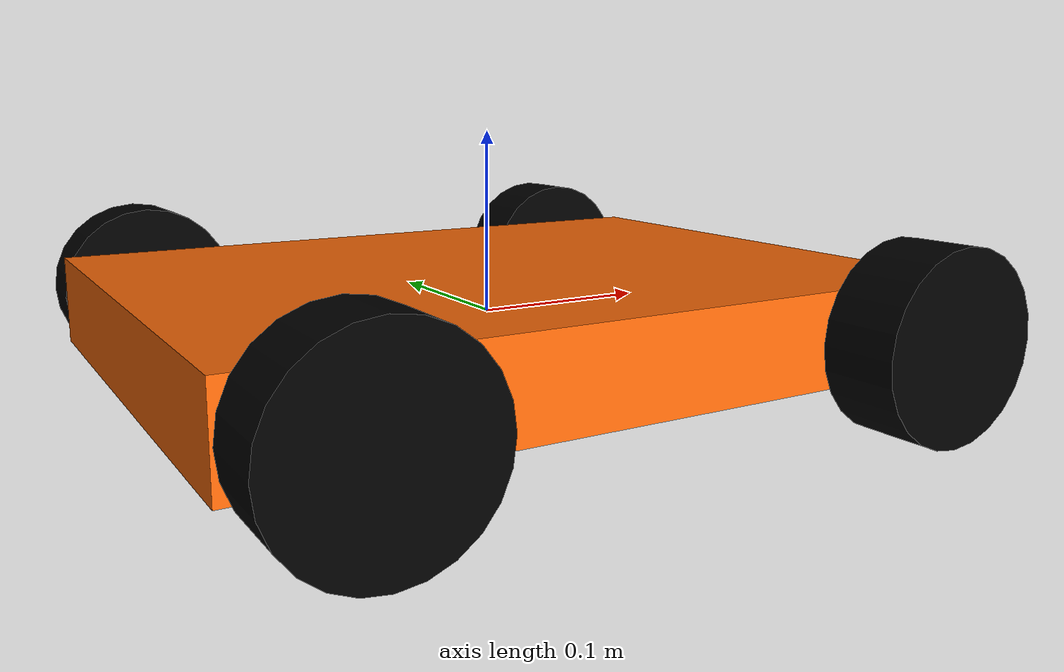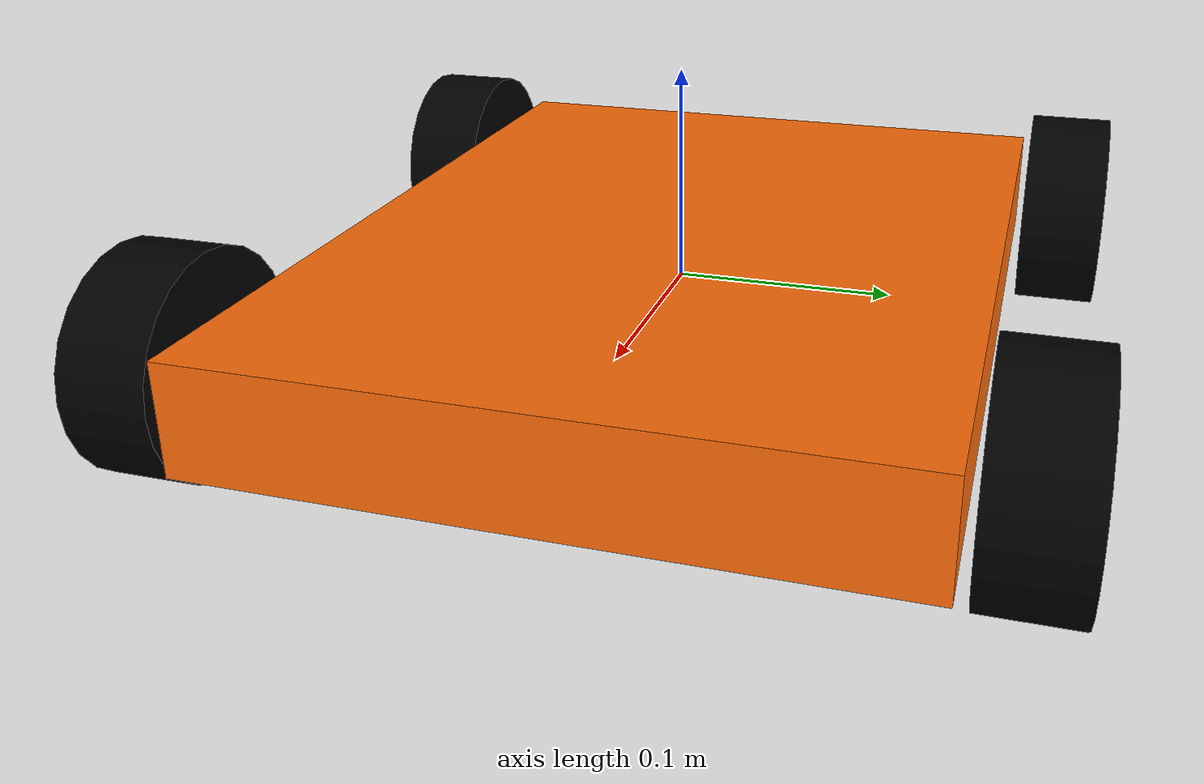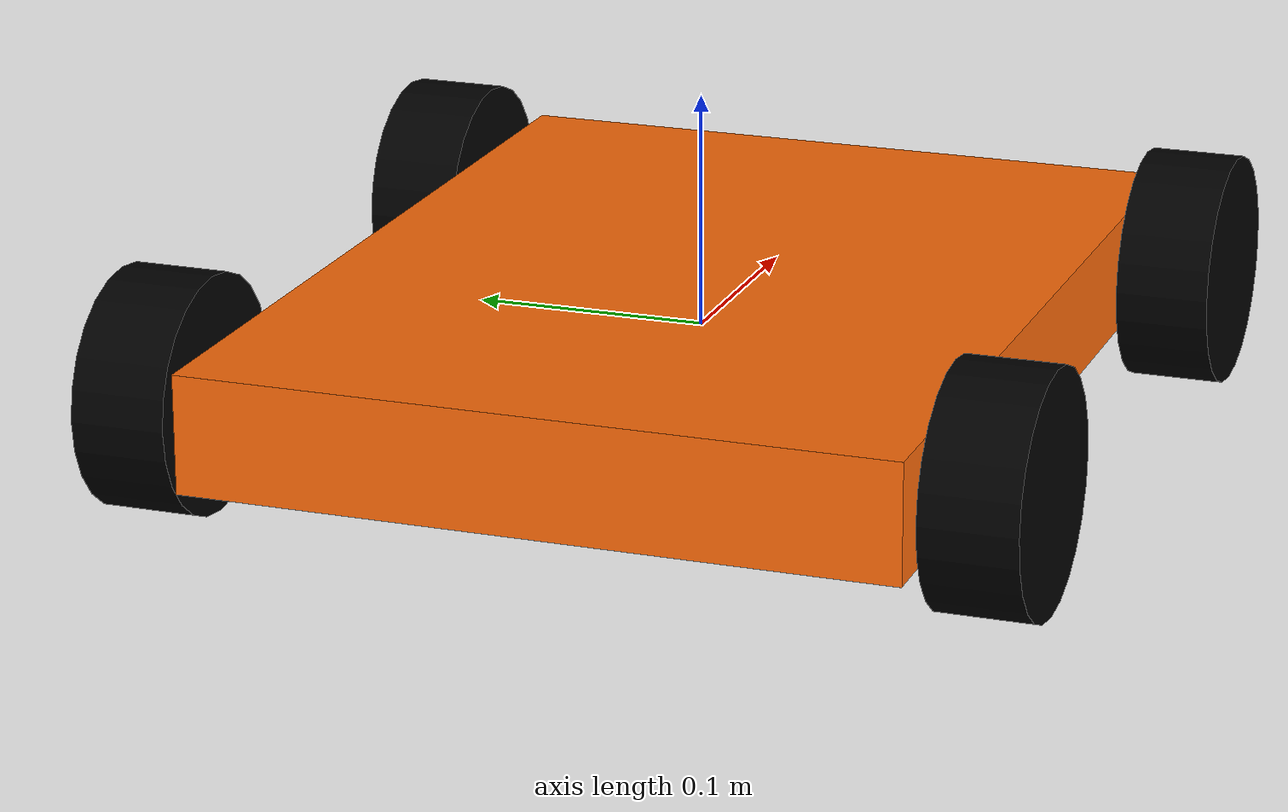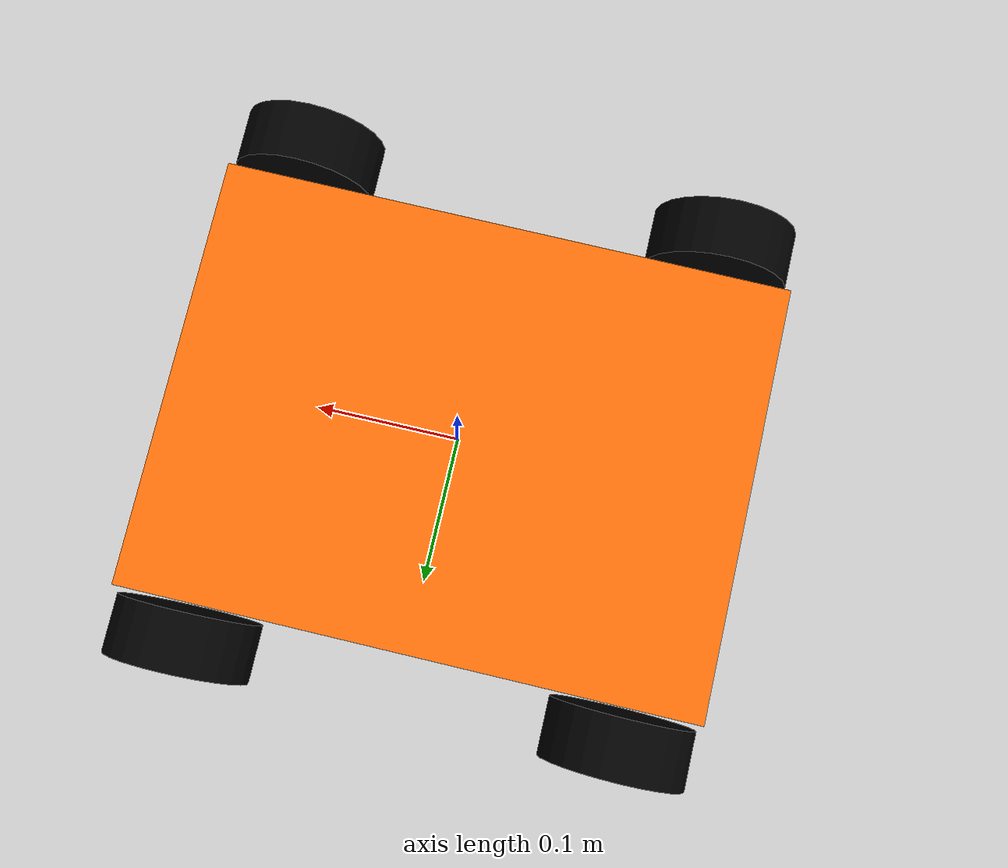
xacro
<?xml version="1.0"?>
<!-- Basic differential drive mobile base -->
<robot xmlns:xacro="http://www.ros.org/wiki/xacro" name="howdybot">
  <xacro:arg name="use_mock_hardware" default="true" />
  <xacro:arg name="disable_commands" default="false"/>

  <!-- TODO FILL IN WITH REAL NUMBERS-->
  <!-- Constants for robot dimensions -->
  <xacro:property name="PI" value="3.1415926535897931"/>
  <xacro:property name="base_mass" value="0.3" /> <!-- arbitrary value for base mass -->
  <xacro:property name="base_width" value="0.3" />   <!-- along y -->
  <xacro:property name="base_length" value="0.4" />  <!-- along x -->
  <xacro:property name="base_height" value="0.05" /> <!-- along z -->
  <xacro:property name="wheel_mass" value="0.3" /> <!-- arbitrary value for wheel mass -->
  <xacro:property name="wheel_len" value="0.04" />
  <xacro:property name="wheel_radius" value="0.05" />
  <xacro:property name="wheel_gap" value="0.005" /> <!-- clearance between wheel inner face and base side -->
  <!-- Wheel centers: inset from front/back so they don't stick out past the base,
       and pushed out sideways with a small gap so wheel and base collisions never overlap. -->
  <xacro:property name="wheel_x_offset" value="${base_length/2 - wheel_radius}" />
  <xacro:property name="wheel_y_offset" value="${base_width/2 + wheel_gap + wheel_len/2}" />
  <xacro:property name="wheel_z_offset" value="0.0" /> <!-- axle at base mid-height -->

  <!-- Base Link (box centered on the link origin) -->
  <link name="base_link">
    <collision>
      <origin xyz="0 0 0" rpy="0 0 0"/>
      <geometry>
        <box size="${base_length} ${base_width} ${base_height}"/>
      </geometry>
    </collision>

    <visual>
      <origin xyz="0 0 0" rpy="0 0 0"/>
      <geometry>
        <box size="${base_length} ${base_width} ${base_height}"/>
      </geometry>
      <material name="orange"/>
    </visual>

    <inertial>
      <origin xyz="0 0 0" rpy="0 0 0"/>
      <mass value="${base_mass}"/>
      <inertia
        ixx="${base_mass / 12.0 * (base_width*base_width + base_height*base_height)}" ixy="0.0" ixz="0.0"
        iyy="${base_mass / 12.0 * (base_length*base_length + base_height*base_height)}" iyz="0.0"
        izz="${base_mass / 12.0 * (base_length*base_length + base_width*base_width)}"/>
    </inertial>
  </link>

  <!-- Wheel macro: x_sign/y_sign are +1 or -1 to pick the corner -->
  <xacro:macro name="wheel" params="prefix x_sign y_sign">
    <joint name="${prefix}_wheel_joint" type="continuous">
      <parent link="base_link"/>
      <child link="${prefix}_wheel"/>
      <origin xyz="${x_sign*wheel_x_offset} ${y_sign*wheel_y_offset} ${wheel_z_offset}" rpy="0 0 0"/>
      <axis xyz="0 1 0"/>
      <dynamics damping="0.2"/>
      <limit effort="100" velocity="10.0"/>
    </joint>

    <link name="${prefix}_wheel">
      <collision>
        <origin xyz="0 0 0" rpy="${PI/2} 0 0"/>
        <geometry>
          <cylinder length="${wheel_len}" radius="${wheel_radius}"/>
        </geometry>
      </collision>

      <visual>
        <origin xyz="0 0 0" rpy="${PI/2} 0 0"/>
        <geometry>
          <cylinder length="${wheel_len}" radius="${wheel_radius}"/>
        </geometry>
        <material name="black"/>
      </visual>

      <!-- Solid cylinder with its axis along the link's y axis -->
      <inertial>
        <origin xyz="0 0 0" rpy="0 0 0"/>
        <mass value="${wheel_mass}"/>
        <inertia
          ixx="${wheel_mass / 12.0 * (3*wheel_radius*wheel_radius + wheel_len*wheel_len)}" ixy="0.0" ixz="0.0"
          iyy="${wheel_mass / 2.0 * wheel_radius*wheel_radius}" iyz="0.0"
          izz="${wheel_mass / 12.0 * (3*wheel_radius*wheel_radius + wheel_len*wheel_len)}"/>
      </inertial>
    </link>
  </xacro:macro>

  <xacro:wheel prefix="front_left"  x_sign="1"  y_sign="1"/>
  <xacro:wheel prefix="front_right" x_sign="1"  y_sign="-1"/>
  <xacro:wheel prefix="rear_left"   x_sign="-1" y_sign="1"/>
  <xacro:wheel prefix="rear_right"  x_sign="-1" y_sign="-1"/>

  <material name="black">
    <color rgba="0.0 0.0 0.0 1.0"/>
  </material>

  <material name="blue">
    <color rgba="0.0 0.0 0.8 1.0"/>
  </material>

  <material name="green">
    <color rgba="0.0 0.8 0.0 1.0"/>
  </material>

  <material name="grey">
    <color rgba="0.2 0.2 0.2 1.0"/>
  </material>

  <material name="orange">
    <color rgba="${255/255} ${108/255} ${10/255} 1.0"/>
  </material>

  <material name="brown">
    <color rgba="${222/255} ${207/255} ${195/255} 1.0"/>
  </material>

  <material name="red">
    <color rgba="0.8 0.0 0.0 1.0"/>
  </material>

  <material name="white">
    <color rgba="1.0 1.0 1.0 1.0"/>
  </material>
  <!-- Import diffbot ros2_control description -->
  <xacro:include filename="../ros2_control/howdybot.ros2_control.xacro" />

  <xacro:howdybot_ros2_control
    name="Howdybot" use_mock_hardware="$(arg use_mock_hardware)" disable_commands="$(arg disable_commands)" />

</robot>
